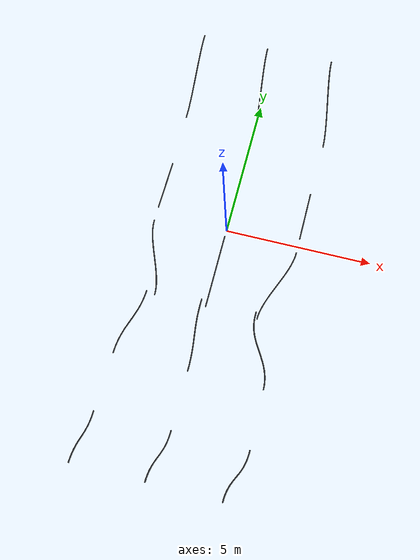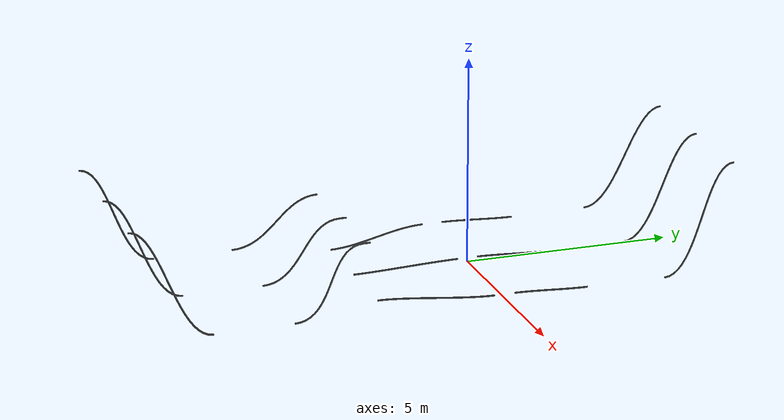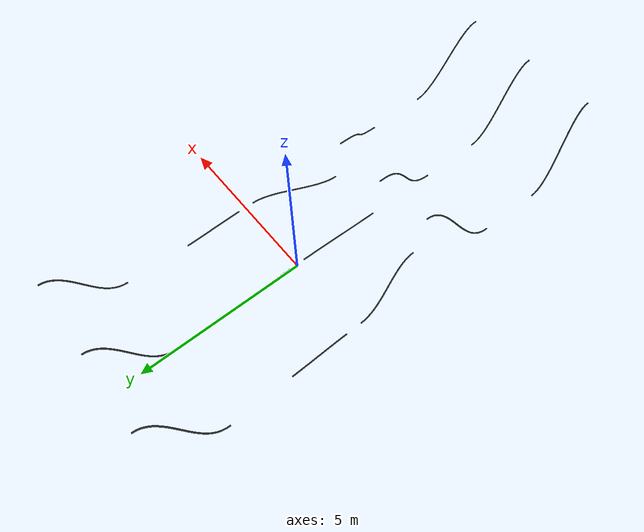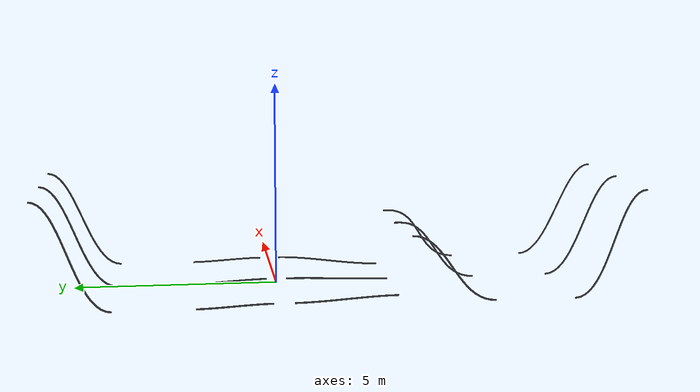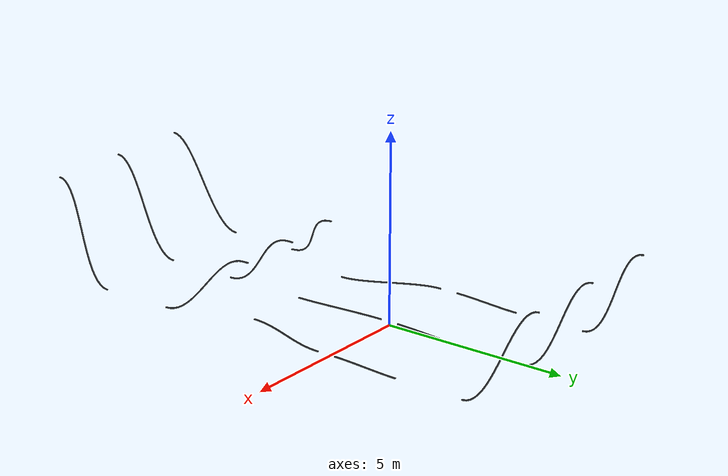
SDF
<?xml version="1.0" ?>
<sdf version="1.8">
  <model name="Electrical_Wires_2">
    <static>true</static>
    <link name="link">
      <collision name="collision">
        <geometry>
          <mesh>
            <uri>model://Electrical_Wires_2/Meshes/Electrical_Wires_2.stl</uri>
            <scale>0.001 0.001 0.001</scale>
          </mesh>
        </geometry>
      </collision>

      <visual name="visual">
        <geometry>
          <mesh>
            <uri>model://Electrical_Wires_2/Meshes/Electrical_Wires_2.stl</uri>
            <scale>0.001 0.001 0.001</scale>
          </mesh>
        </geometry>
        <material>
          <diffuse>0.0 0.0 0.0 0.8</diffuse>
        </material>
      </visual>
    </link>
  </model>
</sdf>
